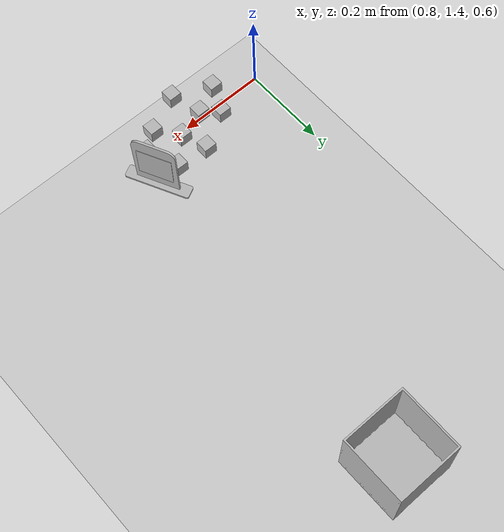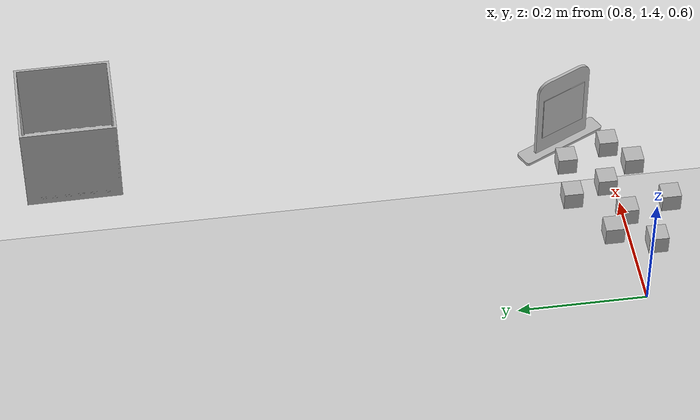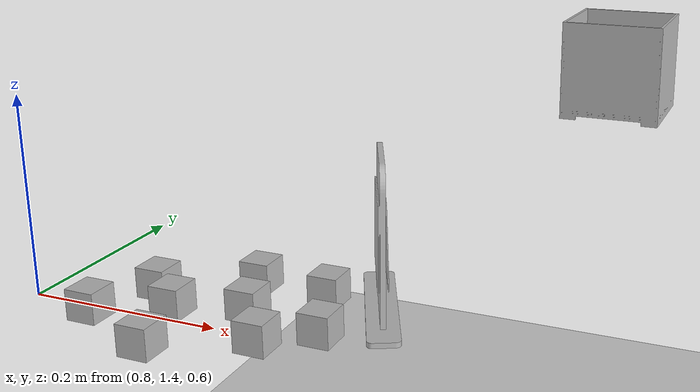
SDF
<sdf version="1.7">
 <world name="default">
  <model name="ground_plane">
   <static>1</static>
   <link name="link">
    <collision name="collision">
     <geometry><plane><normal>0 0 1</normal><size>100 100</size></plane></geometry>
     <surface><friction><ode><mu>100</mu><mu2>50</mu2></ode></friction></surface>
    </collision>
    <visual name="visual">
     <cast_shadows>0</cast_shadows>
     <geometry><plane><normal>0 0 1</normal><size>100 100</size></plane></geometry>
     <material>
      <script><uri>file://media/materials/scripts/gazebo.material</uri><name>Gazebo/Grey</name></script>
     </material>
    </visual>
   </link>
  </model>
  <model name="pancarte_qr_code_zone2BeauSejour">
   <pose>1.13365 1.46965 0.649378 0 0 -1.11219</pose>
   <model name="pancarte">
    <static>1</static>
    <link name="link">
     <collision name="collision">
      <pose>0 0.075 0 0 -0 0</pose>
      <geometry><box><size>0.15 0.15 0.03</size></box></geometry>
     </collision>
     <visual name="visual">
      <geometry>
       <mesh><scale>0.001 0.001 0.001</scale><uri>model://pancarte/meshes/PANCARTE_QR.stl</uri></mesh>
      </geometry>
     </visual>
    </link>
    <pose>8.8e-05 0.001115 -0.037644 1.55978 -0 0</pose>
   </model>
   <model name="qr_code_zone2BeauSejour">
    <static>1</static>
    <link name="qr_code_zone2BeauSejour_link">
     <pose>0 0 0.001 0 -0 1.5708</pose>
     <visual name="visual_qr_code_zone2BeauSejour">
      <cast_shadows>0</cast_shadows>
      <geometry><box><size>0.08 0.08 0.001</size></box></geometry>
      <material>
       <script>
        <uri>model://qr_code_zone2BeauSejour/materials/scripts</uri>
        <uri>model://qr_code_zone2BeauSejour/materials/textures</uri>
        <name>qr_code_zone2BeauSejour/qr_code_zone2BeauSejour</name>
       </script>
      </material>
     </visual>
    </link>
    <pose>-8.8e-05 -0.001115 0.037644 1.55615 -0 0</pose>
   </model>
   <model name="qr_code_zone2BeauSejour_0">
    <static>1</static>
    <link name="qr_code_zone2BeauSejour_link">
     <pose>0 0 0.001 0 -0 1.5708</pose>
     <visual name="visual_qr_code_zone2BeauSejour">
      <cast_shadows>0</cast_shadows>
      <geometry><box><size>0.08 0.08 0.001</size></box></geometry>
      <material>
       <script>
        <uri>model://qr_code_zone2BeauSejour/materials/scripts</uri>
        <uri>model://qr_code_zone2BeauSejour/materials/textures</uri>
        <name>qr_code_zone2BeauSejour/qr_code_zone2BeauSejour</name>
       </script>
      </material>
     </visual>
    </link>
    <pose>-8.8e-05 0.0072 0.037644 -1.58544 0.001593 3.14159</pose>
   </model>
   <static>0</static>
  </model>
  <model name="menagers_commerciale_emballage_sandwich">
   <static>0</static>
   <link name="link">
    <inertial>
     <mass>0.00893</mass>
     <inertia>
      <ixx>4.47e-06</ixx>
      <iyy>4.47e-06</iyy>
      <izz>4.47e-06</izz>
      <ixy>0</ixy>
      <ixz>0</ixz>
      <iyz>0</iyz>
     </inertia>
    </inertial>
    <visual name="cube_visual">
     <geometry><box><size>0.03 0.03 0.03</size></box></geometry>
     <material>
      <script>
       <uri>model://menagers_commerciale_emballage_sandwich/materials/scripts/</uri>
       <uri>model://menagers_commerciale_emballage_sandwich/materials/textures/</uri>
       <name>menagers_commerciale_emballage_sandwich/FaceMaterial</name>
      </script>
     </material>
    </visual>
    <collision name="collision"><geometry><box><size>0.03 0.03 0.03</size></box></geometry></collision>
   </link>
   <pose>0.922312 1.42777 0.625 0 0 -0.005496</pose>
  </model>
  <model name="menagers_commerciale_gobelet_distributeur">
   <static>0</static>
   <link name="link">
    <inertial>
     <mass>0.00893</mass>
     <inertia>
      <ixx>4.47e-06</ixx>
      <iyy>4.47e-06</iyy>
      <izz>4.47e-06</izz>
      <ixy>0</ixy>
      <ixz>0</ixz>
      <iyz>0</iyz>
     </inertia>
    </inertial>
    <visual name="cube_visual">
     <geometry><box><size>0.03 0.03 0.03</size></box></geometry>
     <material>
      <script>
       <uri>model://menagers_commerciale_gobelet_distributeur/materials/scripts/</uri>
       <uri>model://menagers_commerciale_gobelet_distributeur/materials/textures/</uri>
       <name>menagers_commerciale_gobelet_distributeur/FaceMaterial</name>
      </script>
     </material>
    </visual>
    <collision name="collision"><geometry><box><size>0.03 0.03 0.03</size></box></geometry></collision>
   </link>
   <pose>1.02604 1.41771 0.624997 7.7e-05 0.000113 -0.005496</pose>
  </model>
  <model name="menagers_industrielle_fût_metal_200L">
   <static>0</static>
   <link name="link">
    <inertial>
     <mass>0.00893</mass>
     <inertia>
      <ixx>4.47e-06</ixx>
      <iyy>4.47e-06</iyy>
      <izz>4.47e-06</izz>
      <ixy>0</ixy>
      <ixz>0</ixz>
      <iyz>0</iyz>
     </inertia>
    </inertial>
    <visual name="cube_visual">
     <geometry><box><size>0.03 0.03 0.03</size></box></geometry>
     <material>
      <script>
       <uri>model://menagers_industrielle_fût_metal_200L/materials/scripts/</uri>
       <uri>model://menagers_industrielle_fût_metal_200L/materials/textures/</uri>
       <name>menagers_industrielle_fût_metal_200L/FaceMaterial</name>
      </script>
     </material>
    </visual>
    <collision name="collision"><geometry><box><size>0.03 0.03 0.03</size></box></geometry></collision>
   </link>
   <pose>1.06594 1.36647 0.624997 7.7e-05 0.000113 -0.005496</pose>
  </model>
  <model name="menagers_industrielle_jerrycan_20L">
   <static>0</static>
   <link name="link">
    <inertial>
     <mass>0.00893</mass>
     <inertia>
      <ixx>4.47e-06</ixx>
      <iyy>4.47e-06</iyy>
      <izz>4.47e-06</izz>
      <ixy>0</ixy>
      <ixz>0</ixz>
      <iyz>0</iyz>
     </inertia>
    </inertial>
    <visual name="cube_visual">
     <geometry><box><size>0.03 0.03 0.03</size></box></geometry>
     <material>
      <script>
       <uri>model://menagers_industrielle_jerrycan_20L/materials/scripts/</uri>
       <uri>model://menagers_industrielle_jerrycan_20L/materials/textures/</uri>
       <name>menagers_industrielle_jerrycan_20L/FaceMaterial</name>
      </script>
     </material>
    </visual>
    <collision name="collision"><geometry><box><size>0.03 0.03 0.03</size></box></geometry></collision>
   </link>
   <pose>1.10947 1.39925 0.624997 7.7e-05 0.000113 -0.005496</pose>
  </model>
  <model name="menagers_residentielle_canette_soda">
   <static>0</static>
   <link name="link">
    <inertial>
     <mass>0.00893</mass>
     <inertia>
      <ixx>4.47e-06</ixx>
      <iyy>4.47e-06</iyy>
      <izz>4.47e-06</izz>
      <ixy>0</ixy>
      <ixz>0</ixz>
      <iyz>0</iyz>
     </inertia>
    </inertial>
    <visual name="cube_visual">
     <geometry><box><size>0.03 0.03 0.03</size></box></geometry>
     <material>
      <script>
       <uri>model://menagers_residentielle_canette_soda/materials/scripts/</uri>
       <uri>model://menagers_residentielle_canette_soda/materials/textures/</uri>
       <name>menagers_residentielle_canette_soda/FaceMaterial</name>
      </script>
     </material>
    </visual>
    <collision name="collision"><geometry><box><size>0.03 0.03 0.03</size></box></geometry></collision>
   </link>
   <pose>1.08082 1.471 0.624997 7.7e-05 0.000113 -0.005496</pose>
  </model>
  <model name="menagers_residentielle_bouteille_plastique_eau">
   <static>0</static>
   <link name="link">
    <inertial>
     <mass>0.00893</mass>
     <inertia>
      <ixx>4.47e-06</ixx>
      <iyy>4.47e-06</iyy>
      <izz>4.47e-06</izz>
      <ixy>0</ixy>
      <ixz>0</ixz>
      <iyz>0</iyz>
     </inertia>
    </inertial>
    <visual name="cube_visual">
     <geometry><box><size>0.03 0.03 0.03</size></box></geometry>
     <material>
      <script>
       <uri>model://menagers_residentielle_bouteille_plastique_eau/materials/scripts/</uri>
       <uri>model://menagers_residentielle_bouteille_plastique_eau/materials/textures/</uri>
       <name>menagers_residentielle_bouteille_plastique_eau/FaceMaterial</name>
      </script>
     </material>
    </visual>
    <collision name="collision"><geometry><box><size>0.03 0.03 0.03</size></box></geometry></collision>
   </link>
   <pose>1.00544 1.47649 0.624997 7.7e-05 0.000113 -0.005496</pose>
  </model>
  <model name="recyclables_industrielle_papier_kraft_industriel">
   <static>0</static>
   <link name="link">
    <inertial>
     <mass>0.00893</mass>
     <inertia>
      <ixx>4.47e-06</ixx>
      <iyy>4.47e-06</iyy>
      <izz>4.47e-06</izz>
      <ixy>0</ixy>
      <ixz>0</ixz>
      <iyz>0</iyz>
     </inertia>
    </inertial>
    <visual name="cube_visual">
     <geometry><box><size>0.03 0.03 0.03</size></box></geometry>
     <material>
      <script>
       <uri>model://recyclables_industrielle_papier_kraft_industriel/materials/scripts/</uri>
       <uri>model://recyclables_industrielle_papier_kraft_industriel/materials/textures/</uri>
       <name>recyclables_industrielle_papier_kraft_industriel/FaceMaterial</name>
      </script>
     </material>
    </visual>
    <collision name="collision"><geometry><box><size>0.03 0.03 0.03</size></box></geometry></collision>
   </link>
   <pose>0.894053 1.36465 0.624993 -0.000125 2e-06 -0.010583</pose>
  </model>
  <model name="recyclables_residentielle_carton_lait_propre">
   <static>0</static>
   <link name="link">
    <inertial>
     <mass>0.00893</mass>
     <inertia>
      <ixx>4.47e-06</ixx>
      <iyy>4.47e-06</iyy>
      <izz>4.47e-06</izz>
      <ixy>0</ixy>
      <ixz>0</ixz>
      <iyz>0</iyz>
     </inertia>
    </inertial>
    <visual name="cube_visual">
     <geometry><box><size>0.03 0.03 0.03</size></box></geometry>
     <material>
      <script>
       <uri>model://recyclables_residentielle_carton_lait_propre/materials/scripts/</uri>
       <uri>model://recyclables_residentielle_carton_lait_propre/materials/textures/</uri>
       <name>recyclables_residentielle_carton_lait_propre/FaceMaterial</name>
      </script>
     </material>
    </visual>
    <collision name="collision"><geometry><box><size>0.03 0.03 0.03</size></box></geometry></collision>
   </link>
   <pose>0.979324 1.32557 0.624999 0 -1.9e-05 -0.004082</pose>
  </model>
  <model name="dangereux_industrielle_dechet_chimique_fût">
   <static>0</static>
   <link name="link">
    <inertial>
     <mass>0.00893</mass>
     <inertia>
      <ixx>4.47e-06</ixx>
      <iyy>4.47e-06</iyy>
      <izz>4.47e-06</izz>
      <ixy>0</ixy>
      <ixz>0</ixz>
      <iyz>0</iyz>
     </inertia>
    </inertial>
    <visual name="cube_visual">
     <geometry><box><size>0.03 0.03 0.03</size></box></geometry>
     <material>
      <script>
       <uri>model://dangereux_industrielle_dechet_chimique_fût/materials/scripts/</uri>
       <uri>model://dangereux_industrielle_dechet_chimique_fût/materials/textures/</uri>
       <name>dangereux_industrielle_dechet_chimique_fût/FaceMaterial</name>
      </script>
     </material>
    </visual>
    <collision name="collision"><geometry><box><size>0.03 0.03 0.03</size></box></geometry></collision>
   </link>
   <pose>0.958975 1.39792 0.624997 -0.000108 -4e-06 -0.002021</pose>
  </model>
  <model name="corbeille_3">
   <static>1</static>
   <pose>1.19072 2.2495 0.613764 0 -0 0</pose>
   <link name="link">
    <collision name="collision">
     <pose>0 0 0.075 0 -0 0</pose>
     <geometry><box><size>0.15 0.15 0.15</size></box></geometry>
    </collision>
    <visual name="visual">
     <pose>0 0 0.01 1.56319 -0 0</pose>
     <geometry>
      <mesh><scale>0.001 0.001 0.001</scale><uri>model://corbeille/meshes/CORBEILLE.stl</uri></mesh>
     </geometry>
    </visual>
   </link>
  </model>
 </world>
</sdf>
